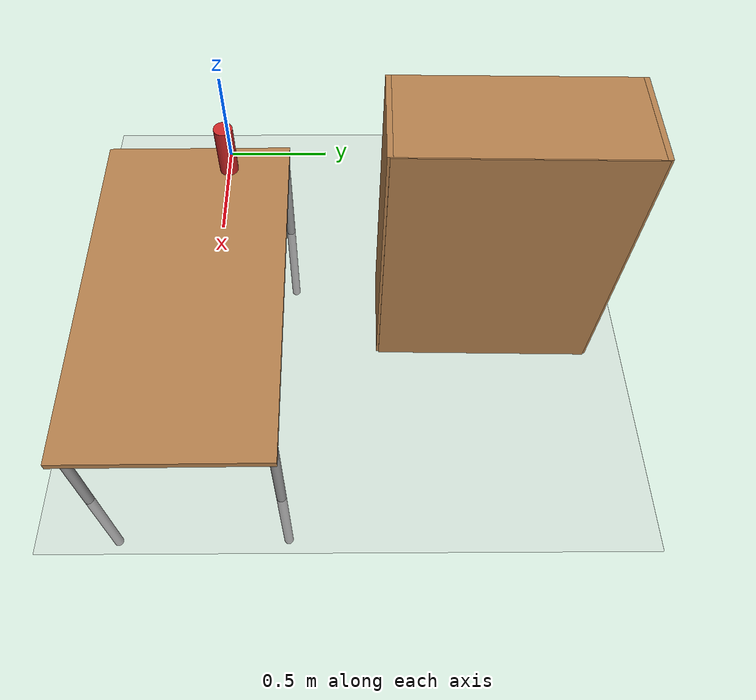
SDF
<sdf version="1.6">
 <world name="default">
  <light name="sun" type="directional">
   <pose>0 0 10 0 -0 0</pose>
   <diffuse>0.8 0.8 0.8 1</diffuse>
   <specular>0.2 0.2 0.2 1</specular>
   <attenuation>
    <range>1000</range>
    <constant>0.9</constant>
    <linear>0.01</linear>
    <quadratic>0.001</quadratic>
   </attenuation>
   <direction>-0.5 0.1 -0.9</direction>
  </light>
  <model name="ground_plane">
   <static>1</static>
   <link name="link">
    <collision name="collision">
     <geometry><plane><normal>0 0 1</normal><size>100 100</size></plane></geometry>
     <surface><friction><ode><mu>100</mu><mu2>50</mu2></ode></friction></surface>
    </collision>
    <visual name="visual">
     <cast_shadows>0</cast_shadows>
     <geometry><plane><normal>0 0 1</normal><size>100 100</size></plane></geometry>
     <material>
      <script><uri>file://media/materials/scripts/gazebo.material</uri><name>Gazebo/Grey</name></script>
     </material>
    </visual>
   </link>
  </model>
  <gravity>0 0 -9.8</gravity>
  <magnetic_field>6e-06 2.3e-05 -4.2e-05</magnetic_field>
  <atmosphere type="adiabatic"/>
  <physics name="default_physics" default="0" type="ode">
   <max_step_size>0.001</max_step_size>
   <real_time_factor>1</real_time_factor>
   <real_time_update_rate>1000</real_time_update_rate>
  </physics>
  <scene><ambient>0.4 0.4 0.4 1</ambient><background>0.7 0.7 0.7 1</background><shadows>1</shadows></scene>
  <spherical_coordinates>
   <surface_model>EARTH_WGS84</surface_model>
   <latitude_deg>0</latitude_deg>
   <longitude_deg>0</longitude_deg>
   <elevation>0</elevation>
   <heading_deg>0</heading_deg>
  </spherical_coordinates>
  <model name="table_clone_0">
   <static>1</static>
   <link name="link">
    <collision name="surface">
     <pose>0 0 1 0 -0 0</pose>
     <geometry><box><size>1.5 0.8 0.03</size></box></geometry>
     <surface><friction><ode><mu>0.6</mu><mu2>0.6</mu2></ode></friction></surface>
    </collision>
    <visual name="visual1">
     <pose>0 0 1 0 -0 0</pose>
     <geometry><box><size>1.5 0.8 0.03</size></box></geometry>
     <material>
      <script><uri>file://media/materials/scripts/gazebo.material</uri><name>Gazebo/Wood</name></script>
     </material>
    </visual>
    <collision name="front_left_leg">
     <pose>0.68 0.38 0.5 0 -0 0</pose>
     <geometry><cylinder><radius>0.02</radius><length>1</length></cylinder></geometry>
    </collision>
    <visual name="front_left_leg">
     <pose>0.68 0.38 0.5 0 -0 0</pose>
     <geometry><cylinder><radius>0.02</radius><length>1</length></cylinder></geometry>
     <material>
      <script><uri>file://media/materials/scripts/gazebo.material</uri><name>Gazebo/Grey</name></script>
     </material>
    </visual>
    <collision name="front_right_leg">
     <pose>0.68 -0.38 0.5 0 -0 0</pose>
     <geometry><cylinder><radius>0.02</radius><length>1</length></cylinder></geometry>
    </collision>
    <visual name="front_right_leg">
     <pose>0.68 -0.38 0.5 0 -0 0</pose>
     <geometry><cylinder><radius>0.02</radius><length>1</length></cylinder></geometry>
     <material>
      <script><uri>file://media/materials/scripts/gazebo.material</uri><name>Gazebo/Grey</name></script>
     </material>
    </visual>
    <collision name="back_right_leg">
     <pose>-0.68 -0.38 0.5 0 -0 0</pose>
     <geometry><cylinder><radius>0.02</radius><length>1</length></cylinder></geometry>
    </collision>
    <visual name="back_right_leg">
     <pose>-0.68 -0.38 0.5 0 -0 0</pose>
     <geometry><cylinder><radius>0.02</radius><length>1</length></cylinder></geometry>
     <material>
      <script><uri>file://media/materials/scripts/gazebo.material</uri><name>Gazebo/Grey</name></script>
     </material>
    </visual>
    <collision name="back_left_leg">
     <pose>-0.68 0.38 0.5 0 -0 0</pose>
     <geometry><cylinder><radius>0.02</radius><length>1</length></cylinder></geometry>
    </collision>
    <visual name="back_left_leg">
     <pose>-0.68 0.38 0.5 0 -0 0</pose>
     <geometry><cylinder><radius>0.02</radius><length>1</length></cylinder></geometry>
     <material>
      <script><uri>file://media/materials/scripts/gazebo.material</uri><name>Gazebo/Grey</name></script>
     </material>
    </visual>
   </link>
   <pose>1.20801 -0.040679 -0.518577 0 0 -3.13587</pose>
  </model>
  <model name="bookshelf">
   <static>1</static>
   <link name="link">
    <inertial><mass>1</mass></inertial>
    <collision name="back">
     <pose>0 0.005 0.6 0 -0 0</pose>
     <geometry><box><size>0.9 0.01 1.2</size></box></geometry>
    </collision>
    <visual name="visual1">
     <pose>0 0.005 0.6 0 -0 0</pose>
     <geometry><box><size>0.9 0.01 1.2</size></box></geometry>
     <material>
      <script><uri>file://media/materials/scripts/gazebo.material</uri><name>Gazebo/Wood</name></script>
     </material>
    </visual>
    <collision name="left_side">
     <pose>0.45 -0.195 0.6 0 -0 0</pose>
     <geometry><box><size>0.02 0.4 1.2</size></box></geometry>
    </collision>
    <visual name="visual2">
     <pose>0.45 -0.195 0.6 0 -0 0</pose>
     <geometry><box><size>0.02 0.4 1.2</size></box></geometry>
     <material>
      <script><uri>file://media/materials/scripts/gazebo.material</uri><name>Gazebo/Wood</name></script>
     </material>
    </visual>
    <collision name="right_side">
     <pose>-0.45 -0.195 0.6 0 -0 0</pose>
     <geometry><box><size>0.02 0.4 1.2</size></box></geometry>
    </collision>
    <visual name="visual3">
     <pose>-0.45 -0.195 0.6 0 -0 0</pose>
     <geometry><box><size>0.02 0.4 1.2</size></box></geometry>
     <material>
      <script><uri>file://media/materials/scripts/gazebo.material</uri><name>Gazebo/Wood</name></script>
     </material>
    </visual>
    <collision name="bottom">
     <pose>0 -0.195 0.03 0 -0 0</pose>
     <geometry><box><size>0.88 0.4 0.06</size></box></geometry>
    </collision>
    <visual name="visual4">
     <pose>0 -0.195 0.03 0 -0 0</pose>
     <geometry><box><size>0.88 0.4 0.06</size></box></geometry>
     <material>
      <script><uri>file://media/materials/scripts/gazebo.material</uri><name>Gazebo/Wood</name></script>
     </material>
    </visual>
    <collision name="top">
     <pose>0 -0.195 1.19 0 -0 0</pose>
     <geometry><box><size>0.88 0.4 0.02</size></box></geometry>
    </collision>
    <visual name="visual5">
     <pose>0 -0.195 1.19 0 -0 0</pose>
     <geometry><box><size>0.88 0.4 0.02</size></box></geometry>
     <material>
      <script><uri>file://media/materials/scripts/gazebo.material</uri><name>Gazebo/Wood</name></script>
     </material>
    </visual>
    <collision name="low_shelf">
     <pose>0 -0.195 0.43 0 -0 0</pose>
     <geometry><box><size>0.88 0.4 0.02</size></box></geometry>
    </collision>
    <visual name="visual6">
     <pose>0 -0.195 0.43 0 -0 0</pose>
     <geometry><box><size>0.88 0.4 0.02</size></box></geometry>
     <material>
      <script><uri>file://media/materials/scripts/gazebo.material</uri><name>Gazebo/Wood</name></script>
     </material>
    </visual>
    <collision name="high_shelf">
     <pose>0 -0.195 0.8 0 -0 0</pose>
     <geometry><box><size>0.88 0.4 0.02</size></box></geometry>
    </collision>
    <visual name="visual7">
     <pose>0 -0.195 0.8 0 -0 0</pose>
     <geometry><box><size>0.88 0.4 0.02</size></box></geometry>
     <material>
      <script><uri>file://media/materials/scripts/gazebo.material</uri><name>Gazebo/Wood</name></script>
     </material>
    </visual>
   </link>
   <pose>1.21889 1.19547 0 0 0 -1.58933</pose>
  </model>
  <model name="pringles_red">
   <pose>0.583434 0.095767 0.613669 1.4e-05 0.000101 1.55974</pose>
   <link name="link">
    <inertial>
     <mass>0.2</mass>
     <inertia>
      <ixx>0.000908</ixx>
      <ixy>0</ixy>
      <ixz>0</ixz>
      <iyy>0.000908</iyy>
      <iyz>0</iyz>
      <izz>0.0002025</izz>
     </inertia>
    </inertial>
    <collision name="collision">
     <geometry><cylinder><radius>0.04</radius><length>0.235</length></cylinder></geometry>
     <surface>
      <contact><ode><min_depth>0.005</min_depth></ode></contact>
      <friction><ode><mu>0.9</mu><mu2>0.9</mu2></ode></friction>
     </surface>
    </collision>
    <visual name="visual">
     <pose>0 0 0 3.1415 -0 0</pose>
     <geometry><cylinder><radius>0.04</radius><length>0.235</length></cylinder></geometry>
     <material>
      <script>
       <uri>model://pringles_red/material/scripts</uri>
       <uri>model://pringles_red/material/textures</uri>
       <name>Custom/PringlesRed</name>
      </script>
     </material>
    </visual>
   </link>
  </model>
 </world>
</sdf>
